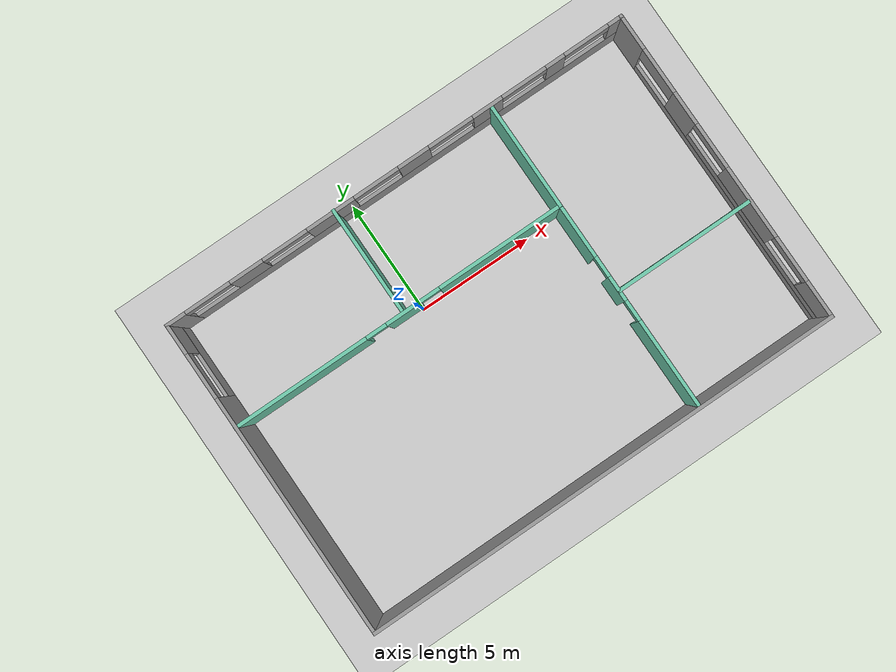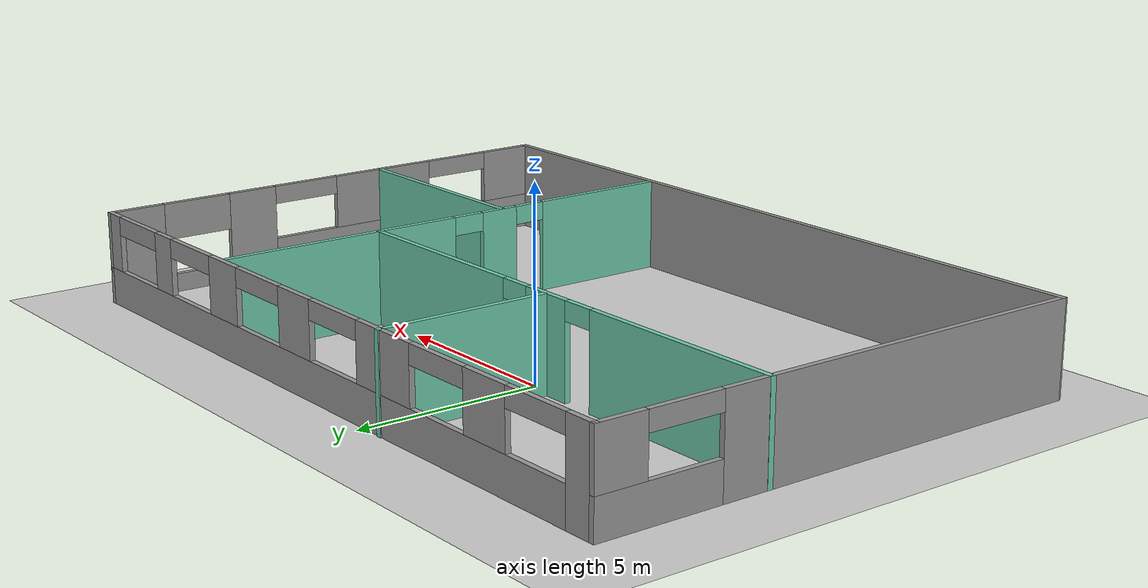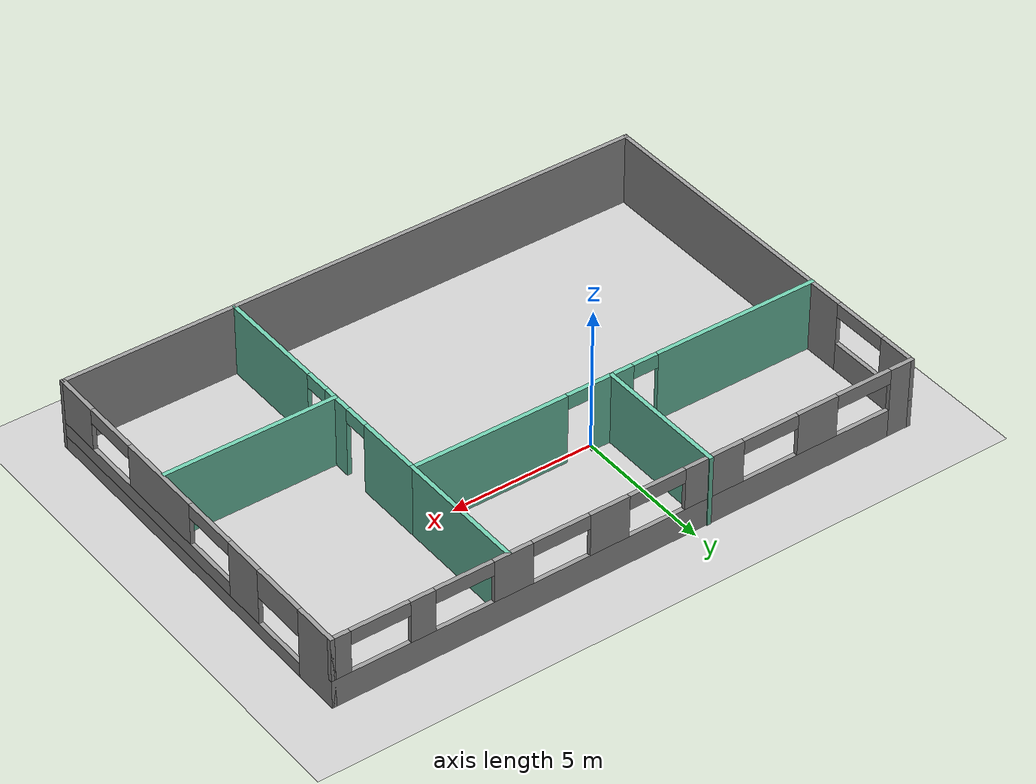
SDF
<sdf version="1.6">
 <world name="default">
  <model name="ground_plane">
   <static>1</static>
   <link name="link">
    <collision name="collision">
     <geometry><plane><normal>0 0 1</normal><size>100 100</size></plane></geometry>
     <surface>
      <contact><collide_bitmask>65535</collide_bitmask></contact>
      <friction><ode><mu>100</mu><mu2>50</mu2></ode></friction>
     </surface>
    </collision>
    <visual name="visual">
     <cast_shadows>0</cast_shadows>
     <geometry><plane><normal>0 0 1</normal><size>100 100</size></plane></geometry>
     <material>
      <script><uri>file://media/materials/scripts/gazebo.material</uri><name>Gazebo/Grey</name></script>
     </material>
    </visual>
   </link>
  </model>
  <model name="myBuilding">
   <pose>2.16453 -2.14271 0 0 -0 0</pose>
   <link name="Wall_1">
    <pose>0.002237 6.86535 0 0 -0 0</pose>
    <visual name="Wall_1_Visual_0">
     <pose>-9.92957 0 1.25 0 -0 0</pose>
     <geometry><box><size>0.890861 0.15 2.5</size></box></geometry>
     <material>
      <script><uri>file://media/materials/scripts/gazebo.material</uri><name>Gazebo/Grey</name></script>
      <ambient>1 1 1 1</ambient>
     </material>
     <meta><layer>0</layer></meta>
    </visual>
    <collision name="Wall_1_Collision_0">
     <geometry><box><size>0.890861 0.15 2.5</size></box></geometry>
     <pose>-9.92957 0 1.25 0 -0 0</pose>
    </collision>
    <visual name="Wall_1_Visual_1">
     <pose>0.44543 0 0.5 0 -0 0</pose>
     <geometry><box><size>19.8591 0.15 1</size></box></geometry>
     <material>
      <script><uri>file://media/materials/scripts/gazebo.material</uri><name>Gazebo/Grey</name></script>
      <ambient>1 1 1 1</ambient>
     </material>
     <meta><layer>0</layer></meta>
    </visual>
    <collision name="Wall_1_Collision_1">
     <geometry><box><size>19.8591 0.15 1</size></box></geometry>
     <pose>0.44543 0 0.5 0 -0 0</pose>
    </collision>
    <visual name="Wall_1_Visual_2">
     <pose>-6.7459 0 1.75 0 -0 0</pose>
     <geometry><box><size>1.47647 0.15 1.5</size></box></geometry>
     <material>
      <script><uri>file://media/materials/scripts/gazebo.material</uri><name>Gazebo/Grey</name></script>
      <ambient>1 1 1 1</ambient>
     </material>
     <meta><layer>0</layer></meta>
    </visual>
    <collision name="Wall_1_Collision_2">
     <geometry><box><size>1.47647 0.15 1.5</size></box></geometry>
     <pose>-6.7459 0 1.75 0 -0 0</pose>
    </collision>
    <visual name="Wall_1_Visual_3">
     <pose>-2.94421 0 1.75 0 -0 0</pose>
     <geometry><box><size>2.12691 0.15 1.5</size></box></geometry>
     <material>
      <script><uri>file://media/materials/scripts/gazebo.material</uri><name>Gazebo/Grey</name></script>
      <ambient>1 1 1 1</ambient>
     </material>
     <meta><layer>0</layer></meta>
    </visual>
    <collision name="Wall_1_Collision_3">
     <geometry><box><size>2.12691 0.15 1.5</size></box></geometry>
     <pose>-2.94421 0 1.75 0 -0 0</pose>
    </collision>
    <visual name="Wall_1_Visual_4">
     <pose>0.812622 0 1.75 0 -0 0</pose>
     <geometry><box><size>1.38676 0.15 1.5</size></box></geometry>
     <material>
      <script><uri>file://media/materials/scripts/gazebo.material</uri><name>Gazebo/Grey</name></script>
      <ambient>1 1 1 1</ambient>
     </material>
     <meta><layer>0</layer></meta>
    </visual>
    <collision name="Wall_1_Collision_4">
     <geometry><box><size>1.38676 0.15 1.5</size></box></geometry>
     <pose>0.812622 0 1.75 0 -0 0</pose>
    </collision>
    <visual name="Wall_1_Visual_5">
     <pose>4.17695 0 1.75 0 -0 0</pose>
     <geometry><box><size>1.3419 0.15 1.5</size></box></geometry>
     <material>
      <script><uri>file://media/materials/scripts/gazebo.material</uri><name>Gazebo/Grey</name></script>
      <ambient>1 1 1 1</ambient>
     </material>
     <meta><layer>0</layer></meta>
    </visual>
    <collision name="Wall_1_Collision_5">
     <geometry><box><size>1.3419 0.15 1.5</size></box></geometry>
     <pose>4.17695 0 1.75 0 -0 0</pose>
    </collision>
    <visual name="Wall_1_Visual_6">
     <pose>7.27213 0 1.75 0 -0 0</pose>
     <geometry><box><size>0.848465 0.15 1.5</size></box></geometry>
     <material>
      <script><uri>file://media/materials/scripts/gazebo.material</uri><name>Gazebo/Grey</name></script>
      <ambient>1 1 1 1</ambient>
     </material>
     <meta><layer>0</layer></meta>
    </visual>
    <collision name="Wall_1_Collision_6">
     <geometry><box><size>0.848465 0.15 1.5</size></box></geometry>
     <pose>7.27213 0 1.75 0 -0 0</pose>
    </collision>
    <visual name="Wall_1_Visual_7">
     <pose>10.0357 0 1.75 0 -0 0</pose>
     <geometry><box><size>0.678634 0.15 1.5</size></box></geometry>
     <material>
      <script><uri>file://media/materials/scripts/gazebo.material</uri><name>Gazebo/Grey</name></script>
      <ambient>1 1 1 1</ambient>
     </material>
     <meta><layer>0</layer></meta>
    </visual>
    <collision name="Wall_1_Collision_7">
     <geometry><box><size>0.678634 0.15 1.5</size></box></geometry>
     <pose>10.0357 0 1.75 0 -0 0</pose>
    </collision>
    <visual name="Wall_1_Visual_8">
     <pose>-8.48414 0 2.25 0 -0 0</pose>
     <geometry><box><size>2 0.15 0.5</size></box></geometry>
     <material>
      <script><uri>file://media/materials/scripts/gazebo.material</uri><name>Gazebo/Grey</name></script>
      <ambient>1 1 1 1</ambient>
     </material>
     <meta><layer>0</layer></meta>
    </visual>
    <collision name="Wall_1_Collision_8">
     <geometry><box><size>2 0.15 0.5</size></box></geometry>
     <pose>-8.48414 0 2.25 0 -0 0</pose>
    </collision>
    <visual name="Wall_1_Visual_9">
     <pose>-5.00767 0 2.25 0 -0 0</pose>
     <geometry><box><size>2 0.15 0.5</size></box></geometry>
     <material>
      <script><uri>file://media/materials/scripts/gazebo.material</uri><name>Gazebo/Grey</name></script>
      <ambient>1 1 1 1</ambient>
     </material>
     <meta><layer>0</layer></meta>
    </visual>
    <collision name="Wall_1_Collision_9">
     <geometry><box><size>2 0.15 0.5</size></box></geometry>
     <pose>-5.00767 0 2.25 0 -0 0</pose>
    </collision>
    <visual name="Wall_1_Visual_10">
     <pose>-0.880757 0 2.25 0 -0 0</pose>
     <geometry><box><size>2 0.15 0.5</size></box></geometry>
     <material>
      <script><uri>file://media/materials/scripts/gazebo.material</uri><name>Gazebo/Grey</name></script>
      <ambient>1 1 1 1</ambient>
     </material>
     <meta><layer>0</layer></meta>
    </visual>
    <collision name="Wall_1_Collision_10">
     <geometry><box><size>2 0.15 0.5</size></box></geometry>
     <pose>-0.880757 0 2.25 0 -0 0</pose>
    </collision>
    <visual name="Wall_1_Visual_11">
     <pose>2.506 0 2.25 0 -0 0</pose>
     <geometry><box><size>2 0.15 0.5</size></box></geometry>
     <material>
      <script><uri>file://media/materials/scripts/gazebo.material</uri><name>Gazebo/Grey</name></script>
      <ambient>1 1 1 1</ambient>
     </material>
     <meta><layer>0</layer></meta>
    </visual>
    <collision name="Wall_1_Collision_11">
     <geometry><box><size>2 0.15 0.5</size></box></geometry>
     <pose>2.506 0 2.25 0 -0 0</pose>
    </collision>
    <visual name="Wall_1_Visual_12">
     <pose>5.8479 0 2.25 0 -0 0</pose>
     <geometry><box><size>2 0.15 0.5</size></box></geometry>
     <material>
      <script><uri>file://media/materials/scripts/gazebo.material</uri><name>Gazebo/Grey</name></script>
      <ambient>1 1 1 1</ambient>
     </material>
     <meta><layer>0</layer></meta>
    </visual>
    <collision name="Wall_1_Collision_12">
     <geometry><box><size>2 0.15 0.5</size></box></geometry>
     <pose>5.8479 0 2.25 0 -0 0</pose>
    </collision>
    <visual name="Wall_1_Visual_13">
     <pose>8.69637 0 2.25 0 -0 0</pose>
     <geometry><box><size>2 0.15 0.5</size></box></geometry>
     <material>
      <script><uri>file://media/materials/scripts/gazebo.material</uri><name>Gazebo/Grey</name></script>
      <ambient>1 1 1 1</ambient>
     </material>
     <meta><layer>0</layer></meta>
    </visual>
    <collision name="Wall_1_Collision_13">
     <geometry><box><size>2 0.15 0.5</size></box></geometry>
     <pose>8.69637 0 2.25 0 -0 0</pose>
    </collision>
   </link>
   <link name="Wall_12">
    <collision name="Wall_12_Collision">
     <geometry><box><size>4.75 0.15 2.5</size></box></geometry>
     <pose>0 0 1.25 0 -0 0</pose>
    </collision>
    <visual name="Wall_12_Visual">
     <pose>0 0 1.25 0 -0 0</pose>
     <geometry><box><size>4.75 0.15 2.5</size></box></geometry>
     <material>
      <script><uri>file://media/materials/scripts/gazebo.material</uri><name>Gazebo/Grey</name></script>
      <ambient>0.435294 0.796078 0.67451 1</ambient>
     </material>
     <meta><layer>0</layer></meta>
    </visual>
    <pose>4.32498 4.56343 0 0 -0 1.5708</pose>
   </link>
   <link name="Wall_14">
    <pose>4.32498 -2.28657 0 0 0 -1.5708</pose>
    <visual name="Wall_14_Visual_0">
     <pose>-3.42191 0 1.25 0 -0 0</pose>
     <geometry><box><size>2.40618 0.15 2.5</size></box></geometry>
     <material>
      <script><uri>file://media/materials/scripts/gazebo.material</uri><name>Gazebo/Grey</name></script>
      <ambient>0.435294 0.796078 0.67451 1</ambient>
     </material>
     <meta><layer>0</layer></meta>
    </visual>
    <collision name="Wall_14_Collision_0">
     <geometry><box><size>2.40618 0.15 2.5</size></box></geometry>
     <pose>-3.42191 0 1.25 0 -0 0</pose>
    </collision>
    <visual name="Wall_14_Visual_1">
     <pose>-0.770737 0 1.25 0 -0 0</pose>
     <geometry><box><size>1.09617 0.15 2.5</size></box></geometry>
     <material>
      <script><uri>file://media/materials/scripts/gazebo.material</uri><name>Gazebo/Grey</name></script>
      <ambient>0.435294 0.796078 0.67451 1</ambient>
     </material>
     <meta><layer>0</layer></meta>
    </visual>
    <collision name="Wall_14_Collision_1">
     <geometry><box><size>1.09617 0.15 2.5</size></box></geometry>
     <pose>-0.770737 0 1.25 0 -0 0</pose>
    </collision>
    <visual name="Wall_14_Visual_2">
     <pose>2.65117 0 1.25 0 -0 0</pose>
     <geometry><box><size>3.94765 0.15 2.5</size></box></geometry>
     <material>
      <script><uri>file://media/materials/scripts/gazebo.material</uri><name>Gazebo/Grey</name></script>
      <ambient>0.435294 0.796078 0.67451 1</ambient>
     </material>
     <meta><layer>0</layer></meta>
    </visual>
    <collision name="Wall_14_Collision_2">
     <geometry><box><size>3.94765 0.15 2.5</size></box></geometry>
     <pose>2.65117 0 1.25 0 -0 0</pose>
    </collision>
    <visual name="Wall_14_Visual_3">
     <pose>-1.76882 0 2.25 0 -0 0</pose>
     <geometry><box><size>0.9 0.15 0.5</size></box></geometry>
     <material>
      <script><uri>file://media/materials/scripts/gazebo.material</uri><name>Gazebo/Grey</name></script>
      <ambient>0.435294 0.796078 0.67451 1</ambient>
     </material>
     <meta><layer>0</layer></meta>
    </visual>
    <collision name="Wall_14_Collision_3">
     <geometry><box><size>0.9 0.15 0.5</size></box></geometry>
     <pose>-1.76882 0 2.25 0 -0 0</pose>
    </collision>
    <visual name="Wall_14_Visual_4">
     <pose>0.227347 0 2.25 0 -0 0</pose>
     <geometry><box><size>0.9 0.15 0.5</size></box></geometry>
     <material>
      <script><uri>file://media/materials/scripts/gazebo.material</uri><name>Gazebo/Grey</name></script>
      <ambient>0.435294 0.796078 0.67451 1</ambient>
     </material>
     <meta><layer>0</layer></meta>
    </visual>
    <collision name="Wall_14_Collision_4">
     <geometry><box><size>0.9 0.15 0.5</size></box></geometry>
     <pose>0.227347 0 2.25 0 -0 0</pose>
    </collision>
   </link>
   <link name="Wall_16">
    <collision name="Wall_16_Collision">
     <geometry><box><size>6 0.15 2.5</size></box></geometry>
     <pose>0 0 1.25 0 -0 0</pose>
    </collision>
    <visual name="Wall_16_Visual">
     <pose>0 0 1.25 0 -0 0</pose>
     <geometry><box><size>6 0.15 2.5</size></box></geometry>
     <material>
      <script><uri>file://media/materials/scripts/gazebo.material</uri><name>Gazebo/Grey</name></script>
      <ambient>0.435294 0.796078 0.67451 1</ambient>
     </material>
     <meta><layer>0</layer></meta>
    </visual>
    <pose>7.2724 -1.61676 0 0 -0 0</pose>
   </link>
   <link name="Wall_2">
    <pose>10.3022 0.007641 0 0 0 -1.5708</pose>
    <visual name="Wall_2_Visual_0">
     <pose>-6.13719 0 1.25 0 -0 0</pose>
     <geometry><box><size>1.59104 0.15 2.5</size></box></geometry>
     <material>
      <script><uri>file://media/materials/scripts/gazebo.material</uri><name>Gazebo/Grey</name></script>
      <ambient>1 1 1 1</ambient>
     </material>
     <meta><layer>0</layer></meta>
    </visual>
    <collision name="Wall_2_Collision_0">
     <geometry><box><size>1.59104 0.15 2.5</size></box></geometry>
     <pose>-6.13719 0 1.25 0 -0 0</pose>
    </collision>
    <visual name="Wall_2_Visual_1">
     <pose>0.79552 0 0.25 0 -0 0</pose>
     <geometry><box><size>12.2744 0.15 0.5</size></box></geometry>
     <material>
      <script><uri>file://media/materials/scripts/gazebo.material</uri><name>Gazebo/Grey</name></script>
      <ambient>1 1 1 1</ambient>
     </material>
     <meta><layer>0</layer></meta>
    </visual>
    <collision name="Wall_2_Collision_1">
     <geometry><box><size>12.2744 0.15 0.5</size></box></geometry>
     <pose>0.79552 0 0.25 0 -0 0</pose>
    </collision>
    <visual name="Wall_2_Visual_2">
     <pose>-2.61465 0 1.5 0 -0 0</pose>
     <geometry><box><size>1.45404 0.15 2</size></box></geometry>
     <material>
      <script><uri>file://media/materials/scripts/gazebo.material</uri><name>Gazebo/Grey</name></script>
      <ambient>1 1 1 1</ambient>
     </material>
     <meta><layer>0</layer></meta>
    </visual>
    <collision name="Wall_2_Collision_2">
     <geometry><box><size>1.45404 0.15 2</size></box></geometry>
     <pose>-2.61465 0 1.5 0 -0 0</pose>
    </collision>
    <visual name="Wall_2_Visual_3">
     <pose>2.52254 0 0.75 0 -0 0</pose>
     <geometry><box><size>8.82034 0.15 0.5</size></box></geometry>
     <material>
      <script><uri>file://media/materials/scripts/gazebo.material</uri><name>Gazebo/Grey</name></script>
      <ambient>1 1 1 1</ambient>
     </material>
     <meta><layer>0</layer></meta>
    </visual>
    <collision name="Wall_2_Collision_3">
     <geometry><box><size>8.82034 0.15 0.5</size></box></geometry>
     <pose>2.52254 0 0.75 0 -0 0</pose>
    </collision>
    <visual name="Wall_2_Visual_4">
     <pose>1.7029 0 1.75 0 -0 0</pose>
     <geometry><box><size>3.18107 0.15 1.5</size></box></geometry>
     <material>
      <script><uri>file://media/materials/scripts/gazebo.material</uri><name>Gazebo/Grey</name></script>
      <ambient>1 1 1 1</ambient>
     </material>
     <meta><layer>0</layer></meta>
    </visual>
    <collision name="Wall_2_Collision_4">
     <geometry><box><size>3.18107 0.15 1.5</size></box></geometry>
     <pose>1.7029 0 1.75 0 -0 0</pose>
    </collision>
    <visual name="Wall_2_Visual_5">
     <pose>6.11308 0 1.75 0 -0 0</pose>
     <geometry><box><size>1.63928 0.15 1.5</size></box></geometry>
     <material>
      <script><uri>file://media/materials/scripts/gazebo.material</uri><name>Gazebo/Grey</name></script>
      <ambient>1 1 1 1</ambient>
     </material>
     <meta><layer>0</layer></meta>
    </visual>
    <collision name="Wall_2_Collision_5">
     <geometry><box><size>1.63928 0.15 1.5</size></box></geometry>
     <pose>6.11308 0 1.75 0 -0 0</pose>
    </collision>
    <visual name="Wall_2_Visual_6">
     <pose>-4.34167 0 2 0 -0 0</pose>
     <geometry><box><size>2 0.15 1</size></box></geometry>
     <material>
      <script><uri>file://media/materials/scripts/gazebo.material</uri><name>Gazebo/Grey</name></script>
      <ambient>1 1 1 1</ambient>
     </material>
     <meta><layer>0</layer></meta>
    </visual>
    <collision name="Wall_2_Collision_6">
     <geometry><box><size>2 0.15 1</size></box></geometry>
     <pose>-4.34167 0 2 0 -0 0</pose>
    </collision>
    <visual name="Wall_2_Visual_7">
     <pose>-0.88763 0 2.25 0 -0 0</pose>
     <geometry><box><size>2 0.15 0.5</size></box></geometry>
     <material>
      <script><uri>file://media/materials/scripts/gazebo.material</uri><name>Gazebo/Grey</name></script>
      <ambient>1 1 1 1</ambient>
     </material>
     <meta><layer>0</layer></meta>
    </visual>
    <collision name="Wall_2_Collision_7">
     <geometry><box><size>2 0.15 0.5</size></box></geometry>
     <pose>-0.88763 0 2.25 0 -0 0</pose>
    </collision>
    <visual name="Wall_2_Visual_8">
     <pose>4.29344 0 2.25 0 -0 0</pose>
     <geometry><box><size>2 0.15 0.5</size></box></geometry>
     <material>
      <script><uri>file://media/materials/scripts/gazebo.material</uri><name>Gazebo/Grey</name></script>
      <ambient>1 1 1 1</ambient>
     </material>
     <meta><layer>0</layer></meta>
    </visual>
    <collision name="Wall_2_Collision_8">
     <geometry><box><size>2 0.15 0.5</size></box></geometry>
     <pose>4.29344 0 2.25 0 -0 0</pose>
    </collision>
   </link>
   <link name="Wall_3">
    <collision name="Wall_3_Collision">
     <geometry><box><size>20.75 0.15 2.5</size></box></geometry>
     <pose>0 0 1.25 0 -0 0</pose>
    </collision>
    <visual name="Wall_3_Visual">
     <pose>0 0 1.25 0 -0 0</pose>
     <geometry><box><size>20.75 0.15 2.5</size></box></geometry>
     <material>
      <script><uri>file://media/materials/scripts/gazebo.material</uri><name>Gazebo/Grey</name></script>
      <ambient>1 1 1 1</ambient>
     </material>
     <meta><layer>0</layer></meta>
    </visual>
    <pose>0.002237 -6.89493 0 0 -0 3.14159</pose>
   </link>
   <link name="Wall_4">
    <pose>-10.2978 0.007641 0 0 -0 1.5708</pose>
    <visual name="Wall_4_Visual_0">
     <pose>-1.68338 0 1.25 0 -0 0</pose>
     <geometry><box><size>10.4987 0.15 2.5</size></box></geometry>
     <material>
      <script><uri>file://media/materials/scripts/gazebo.material</uri><name>Gazebo/Grey</name></script>
      <ambient>1 1 1 1</ambient>
     </material>
     <meta><layer>0</layer></meta>
    </visual>
    <collision name="Wall_4_Collision_0">
     <geometry><box><size>10.4987 0.15 2.5</size></box></geometry>
     <pose>-1.68338 0 1.25 0 -0 0</pose>
    </collision>
    <visual name="Wall_4_Visual_1">
     <pose>5.24934 0 0.5 0 -0 0</pose>
     <geometry><box><size>3.36675 0.15 1</size></box></geometry>
     <material>
      <script><uri>file://media/materials/scripts/gazebo.material</uri><name>Gazebo/Grey</name></script>
      <ambient>1 1 1 1</ambient>
     </material>
     <meta><layer>0</layer></meta>
    </visual>
    <collision name="Wall_4_Collision_1">
     <geometry><box><size>3.36675 0.15 1</size></box></geometry>
     <pose>5.24934 0 0.5 0 -0 0</pose>
    </collision>
    <visual name="Wall_4_Visual_2">
     <pose>6.24934 0 1.75 0 -0 0</pose>
     <geometry><box><size>1.36675 0.15 1.5</size></box></geometry>
     <material>
      <script><uri>file://media/materials/scripts/gazebo.material</uri><name>Gazebo/Grey</name></script>
      <ambient>1 1 1 1</ambient>
     </material>
     <meta><layer>0</layer></meta>
    </visual>
    <collision name="Wall_4_Collision_2">
     <geometry><box><size>1.36675 0.15 1.5</size></box></geometry>
     <pose>6.24934 0 1.75 0 -0 0</pose>
    </collision>
    <visual name="Wall_4_Visual_3">
     <pose>4.56596 0 2.25 0 -0 0</pose>
     <geometry><box><size>2 0.15 0.5</size></box></geometry>
     <material>
      <script><uri>file://media/materials/scripts/gazebo.material</uri><name>Gazebo/Grey</name></script>
      <ambient>1 1 1 1</ambient>
     </material>
     <meta><layer>0</layer></meta>
    </visual>
    <collision name="Wall_4_Collision_3">
     <geometry><box><size>2 0.15 0.5</size></box></geometry>
     <pose>4.56596 0 2.25 0 -0 0</pose>
    </collision>
   </link>
   <link name="Wall_6">
    <pose>-3.00224 2.26527 0 0 -0 0</pose>
    <visual name="Wall_6_Visual_0">
     <pose>-4.40945 0 1.25 0 -0 0</pose>
     <geometry><box><size>5.93111 0.15 2.5</size></box></geometry>
     <material>
      <script><uri>file://media/materials/scripts/gazebo.material</uri><name>Gazebo/Grey</name></script>
      <ambient>0.435294 0.796078 0.67451 1</ambient>
     </material>
     <meta><layer>0</layer></meta>
    </visual>
    <collision name="Wall_6_Collision_0">
     <geometry><box><size>5.93111 0.15 2.5</size></box></geometry>
     <pose>-4.40945 0 1.25 0 -0 0</pose>
    </collision>
    <visual name="Wall_6_Visual_1">
     <pose>0.20605 0 1.25 0 -0 0</pose>
     <geometry><box><size>1.49989 0.15 2.5</size></box></geometry>
     <material>
      <script><uri>file://media/materials/scripts/gazebo.material</uri><name>Gazebo/Grey</name></script>
      <ambient>0.435294 0.796078 0.67451 1</ambient>
     </material>
     <meta><layer>0</layer></meta>
    </visual>
    <collision name="Wall_6_Collision_1">
     <geometry><box><size>1.49989 0.15 2.5</size></box></geometry>
     <pose>0.20605 0 1.25 0 -0 0</pose>
    </collision>
    <visual name="Wall_6_Visual_2">
     <pose>4.6155 0 1.25 0 -0 0</pose>
     <geometry><box><size>5.51901 0.15 2.5</size></box></geometry>
     <material>
      <script><uri>file://media/materials/scripts/gazebo.material</uri><name>Gazebo/Grey</name></script>
      <ambient>0.435294 0.796078 0.67451 1</ambient>
     </material>
     <meta><layer>0</layer></meta>
    </visual>
    <collision name="Wall_6_Collision_2">
     <geometry><box><size>5.51901 0.15 2.5</size></box></geometry>
     <pose>4.6155 0 1.25 0 -0 0</pose>
    </collision>
    <visual name="Wall_6_Visual_3">
     <pose>-0.993894 0 2.25 0 -0 0</pose>
     <geometry><box><size>0.9 0.15 0.5</size></box></geometry>
     <material>
      <script><uri>file://media/materials/scripts/gazebo.material</uri><name>Gazebo/Grey</name></script>
      <ambient>0.435294 0.796078 0.67451 1</ambient>
     </material>
     <meta><layer>0</layer></meta>
    </visual>
    <collision name="Wall_6_Collision_3">
     <geometry><box><size>0.9 0.15 0.5</size></box></geometry>
     <pose>-0.993894 0 2.25 0 -0 0</pose>
    </collision>
    <visual name="Wall_6_Visual_4">
     <pose>1.40599 0 2.25 0 -0 0</pose>
     <geometry><box><size>0.9 0.15 0.5</size></box></geometry>
     <material>
      <script><uri>file://media/materials/scripts/gazebo.material</uri><name>Gazebo/Grey</name></script>
      <ambient>0.435294 0.796078 0.67451 1</ambient>
     </material>
     <meta><layer>0</layer></meta>
    </visual>
    <collision name="Wall_6_Collision_4">
     <geometry><box><size>0.9 0.15 0.5</size></box></geometry>
     <pose>1.40599 0 2.25 0 -0 0</pose>
    </collision>
   </link>
   <link name="Wall_9">
    <collision name="Wall_9_Collision">
     <geometry><box><size>4.75 0.15 2.5</size></box></geometry>
     <pose>0 0 1.25 0 -0 0</pose>
    </collision>
    <visual name="Wall_9_Visual">
     <pose>0 0 1.25 0 -0 0</pose>
     <geometry><box><size>4.75 0.15 2.5</size></box></geometry>
     <material>
      <script><uri>file://media/materials/scripts/gazebo.material</uri><name>Gazebo/Grey</name></script>
      <ambient>0.435294 0.796078 0.67451 1</ambient>
     </material>
     <meta><layer>0</layer></meta>
    </visual>
    <pose>-2.77747 4.59493 0 0 -0 1.5708</pose>
   </link>
   <static>1</static>
  </model>
 </world>
</sdf>
